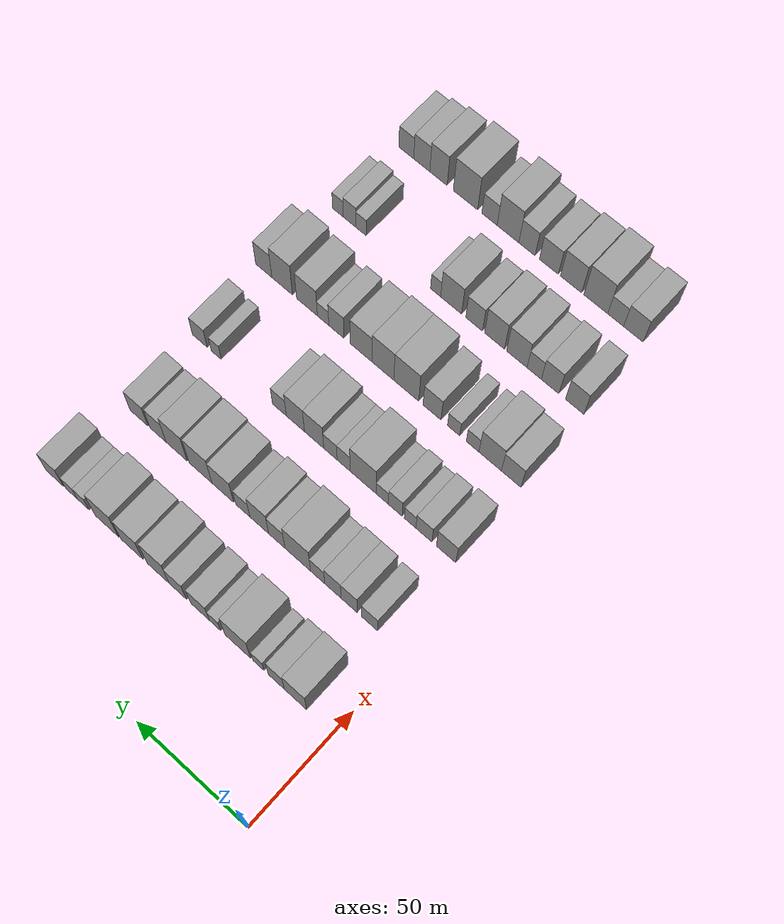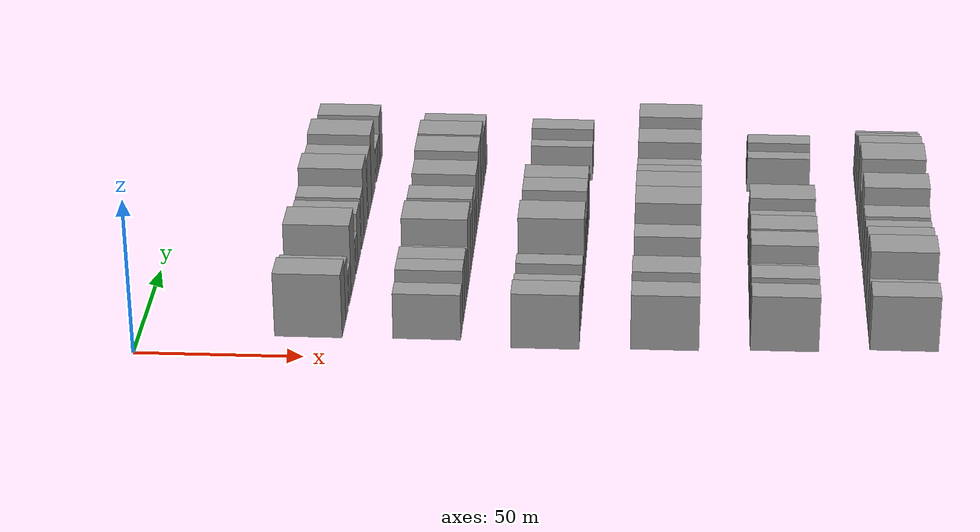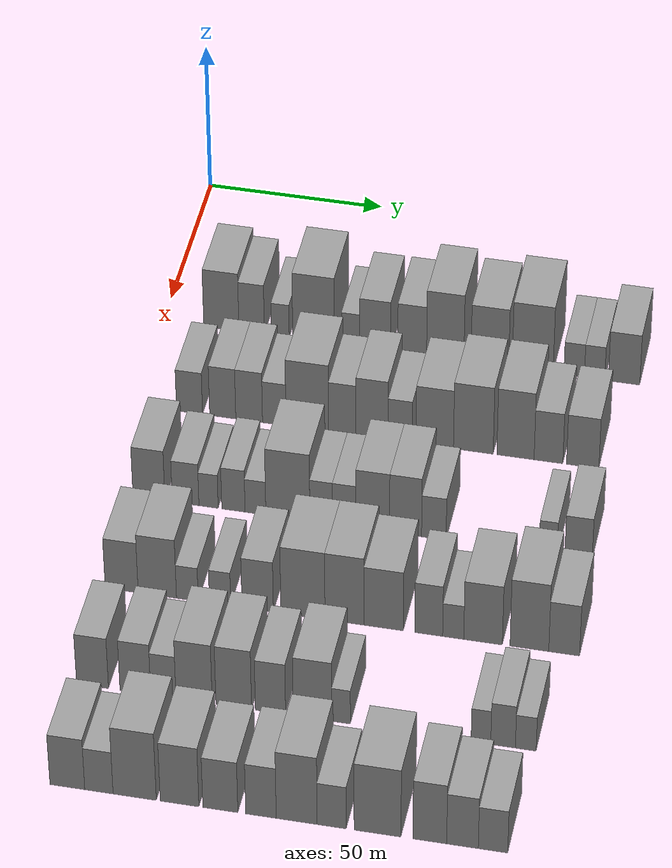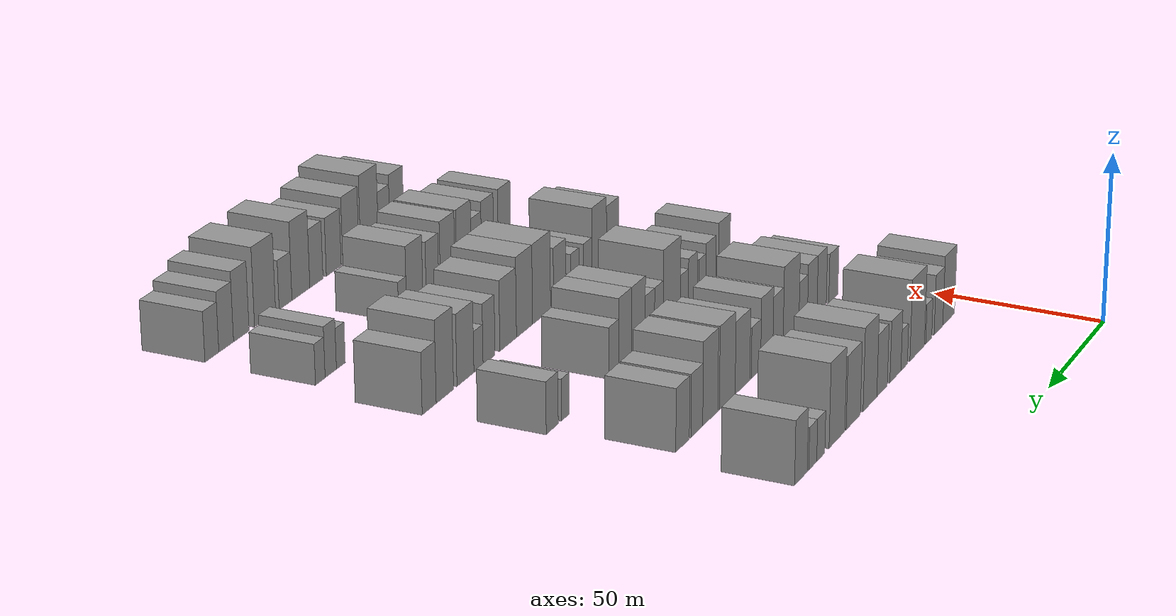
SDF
<sdf version="1.6">
 <world name="default">
  <model name="building_55">
   <static>1</static>
   <pose>50.0000 16.6256 0 0.000000 0.000000 0.000000</pose>
   <link name="link">
    <pose>0 0 10.50 0 0 0</pose>
    <collision name="collision"><geometry><box><size>20.0000 9.9738 21.0000</size></box></geometry></collision>
    <visual name="visual">
     <cast_shadows>0</cast_shadows>
     <geometry><box><size>20.0000 9.9738 21.0000</size></box></geometry>
     <material>
      <script>
       <uri>model://grey_wall/materials/scripts</uri>
       <uri>model://grey_wall/materials/textures</uri>
       <name>vrc/grey_wall</name>
      </script>
     </material>
    </visual>
   </link>
  </model>
  <model name="building_56">
   <static>1</static>
   <pose>50.0000 25.2198 0 0.000000 0.000000 0.000000</pose>
   <link name="link">
    <pose>0 0 9.00 0 0 0</pose>
    <collision name="collision"><geometry><box><size>20.0000 7.2147 18.0000</size></box></geometry></collision>
    <visual name="visual">
     <cast_shadows>0</cast_shadows>
     <geometry><box><size>20.0000 7.2147 18.0000</size></box></geometry>
     <material>
      <script>
       <uri>model://grey_wall/materials/scripts</uri>
       <uri>model://grey_wall/materials/textures</uri>
       <name>vrc/grey_wall</name>
      </script>
     </material>
    </visual>
   </link>
  </model>
  <model name="building_57">
   <static>1</static>
   <pose>50.0000 33.3422 0 0.000000 0.000000 0.000000</pose>
   <link name="link">
    <pose>0 0 6.00 0 0 0</pose>
    <collision name="collision"><geometry><box><size>20.0000 5.0302 12.0000</size></box></geometry></collision>
    <visual name="visual">
     <cast_shadows>0</cast_shadows>
     <geometry><box><size>20.0000 5.0302 12.0000</size></box></geometry>
     <material>
      <script>
       <uri>model://grey_wall/materials/scripts</uri>
       <uri>model://grey_wall/materials/textures</uri>
       <name>vrc/grey_wall</name>
      </script>
     </material>
    </visual>
   </link>
  </model>
  <model name="building_58">
   <static>1</static>
   <pose>50.0000 42.7394 0 0.000000 0.000000 0.000000</pose>
   <link name="link">
    <pose>0 0 12.00 0 0 0</pose>
    <collision name="collision"><geometry><box><size>20.0000 11.7641 24.0000</size></box></geometry></collision>
    <visual name="visual">
     <cast_shadows>0</cast_shadows>
     <geometry><box><size>20.0000 11.7641 24.0000</size></box></geometry>
     <material>
      <script>
       <uri>model://grey_wall/materials/scripts</uri>
       <uri>model://grey_wall/materials/textures</uri>
       <name>vrc/grey_wall</name>
      </script>
     </material>
    </visual>
   </link>
  </model>
  <model name="building_59">
   <static>1</static>
   <pose>50.0000 53.1922 0 0.000000 0.000000 0.000000</pose>
   <link name="link">
    <pose>0 0 6.00 0 0 0</pose>
    <collision name="collision"><geometry><box><size>20.0000 5.1414 12.0000</size></box></geometry></collision>
    <visual name="visual">
     <cast_shadows>0</cast_shadows>
     <geometry><box><size>20.0000 5.1414 12.0000</size></box></geometry>
     <material>
      <script>
       <uri>model://grey_wall/materials/scripts</uri>
       <uri>model://grey_wall/materials/textures</uri>
       <name>vrc/grey_wall</name>
      </script>
     </material>
    </visual>
   </link>
  </model>
  <model name="building_60">
   <static>1</static>
   <pose>50.0000 60.1032 0 0.000000 0.000000 0.000000</pose>
   <link name="link">
    <pose>0 0 9.00 0 0 0</pose>
    <collision name="collision"><geometry><box><size>20.0000 8.6808 18.0000</size></box></geometry></collision>
    <visual name="visual">
     <cast_shadows>0</cast_shadows>
     <geometry><box><size>20.0000 8.6808 18.0000</size></box></geometry>
     <material>
      <script>
       <uri>model://grey_wall/materials/scripts</uri>
       <uri>model://grey_wall/materials/textures</uri>
       <name>vrc/grey_wall</name>
      </script>
     </material>
    </visual>
   </link>
  </model>
  <model name="building_61">
   <static>1</static>
   <pose>50.0000 70.4776 0 0.000000 0.000000 0.000000</pose>
   <link name="link">
    <pose>0 0 9.00 0 0 0</pose>
    <collision name="collision"><geometry><box><size>20.0000 8.0680 18.0000</size></box></geometry></collision>
    <visual name="visual">
     <cast_shadows>0</cast_shadows>
     <geometry><box><size>20.0000 8.0680 18.0000</size></box></geometry>
     <material>
      <script>
       <uri>model://grey_wall/materials/scripts</uri>
       <uri>model://grey_wall/materials/textures</uri>
       <name>vrc/grey_wall</name>
      </script>
     </material>
    </visual>
   </link>
  </model>
  <model name="building_62">
   <static>1</static>
   <pose>50.0000 79.7309 0 0.000000 0.000000 0.000000</pose>
   <link name="link">
    <pose>0 0 12.00 0 0 0</pose>
    <collision name="collision"><geometry><box><size>20.0000 10.4385 24.0000</size></box></geometry></collision>
    <visual name="visual">
     <cast_shadows>0</cast_shadows>
     <geometry><box><size>20.0000 10.4385 24.0000</size></box></geometry>
     <material>
      <script>
       <uri>model://grey_wall/materials/scripts</uri>
       <uri>model://grey_wall/materials/textures</uri>
       <name>vrc/grey_wall</name>
      </script>
     </material>
    </visual>
   </link>
  </model>
  <model name="building_63">
   <static>1</static>
   <pose>50.0000 92.1981 0 0.000000 0.000000 0.000000</pose>
   <link name="link">
    <pose>0 0 10.50 0 0 0</pose>
    <collision name="collision"><geometry><box><size>20.0000 10.4959 21.0000</size></box></geometry></collision>
    <visual name="visual">
     <cast_shadows>0</cast_shadows>
     <geometry><box><size>20.0000 10.4959 21.0000</size></box></geometry>
     <material>
      <script>
       <uri>model://grey_wall/materials/scripts</uri>
       <uri>model://grey_wall/materials/textures</uri>
       <name>vrc/grey_wall</name>
      </script>
     </material>
    </visual>
   </link>
  </model>
  <model name="building_64">
   <static>1</static>
   <pose>50.0000 104.1348 0 0.000000 0.000000 0.000000</pose>
   <link name="link">
    <pose>0 0 12.00 0 0 0</pose>
    <collision name="collision"><geometry><box><size>20.0000 11.3775 24.0000</size></box></geometry></collision>
    <visual name="visual">
     <cast_shadows>0</cast_shadows>
     <geometry><box><size>20.0000 11.3775 24.0000</size></box></geometry>
     <material>
      <script>
       <uri>model://grey_wall/materials/scripts</uri>
       <uri>model://grey_wall/materials/textures</uri>
       <name>vrc/grey_wall</name>
      </script>
     </material>
    </visual>
   </link>
  </model>
  <model name="building_65">
   <static>1</static>
   <pose>50.0000 115.6754 0 0.000000 0.000000 0.000000</pose>
   <link name="link">
    <pose>0 0 6.00 0 0 0</pose>
    <collision name="collision"><geometry><box><size>20.0000 5.7039 12.0000</size></box></geometry></collision>
    <visual name="visual">
     <cast_shadows>0</cast_shadows>
     <geometry><box><size>20.0000 5.7039 12.0000</size></box></geometry>
     <material>
      <script>
       <uri>model://grey_wall/materials/scripts</uri>
       <uri>model://grey_wall/materials/textures</uri>
       <name>vrc/grey_wall</name>
      </script>
     </material>
    </visual>
   </link>
  </model>
  <model name="building_66">
   <static>1</static>
   <pose>50.0000 121.3418 0 0.000000 0.000000 0.000000</pose>
   <link name="link">
    <pose>0 0 6.00 0 0 0</pose>
    <collision name="collision"><geometry><box><size>20.0000 5.6288 12.0000</size></box></geometry></collision>
    <visual name="visual">
     <cast_shadows>0</cast_shadows>
     <geometry><box><size>20.0000 5.6288 12.0000</size></box></geometry>
     <material>
      <script>
       <uri>model://grey_wall/materials/scripts</uri>
       <uri>model://grey_wall/materials/textures</uri>
       <name>vrc/grey_wall</name>
      </script>
     </material>
    </visual>
   </link>
  </model>
  <model name="building_67">
   <static>1</static>
   <pose>50.0000 129.4987 0 0.000000 0.000000 0.000000</pose>
   <link name="link">
    <pose>0 0 9.00 0 0 0</pose>
    <collision name="collision"><geometry><box><size>20.0000 8.6850 18.0000</size></box></geometry></collision>
    <visual name="visual">
     <cast_shadows>0</cast_shadows>
     <geometry><box><size>20.0000 8.6850 18.0000</size></box></geometry>
     <material>
      <script>
       <uri>model://grey_wall/materials/scripts</uri>
       <uri>model://grey_wall/materials/textures</uri>
       <name>vrc/grey_wall</name>
      </script>
     </material>
    </visual>
   </link>
  </model>
  <model name="building_180">
   <static>1</static>
   <pose>85.0000 15.6323 0 0.000000 0.000000 0.000000</pose>
   <link name="link">
    <pose>0 0 7.50 0 0 0</pose>
    <collision name="collision"><geometry><box><size>20.0000 7.2314 15.0000</size></box></geometry></collision>
    <visual name="visual">
     <cast_shadows>0</cast_shadows>
     <geometry><box><size>20.0000 7.2314 15.0000</size></box></geometry>
     <material>
      <script>
       <uri>model://grey_wall/materials/scripts</uri>
       <uri>model://grey_wall/materials/textures</uri>
       <name>vrc/grey_wall</name>
      </script>
     </material>
    </visual>
   </link>
  </model>
  <model name="building_181">
   <static>1</static>
   <pose>85.0000 24.8751 0 0.000000 0.000000 0.000000</pose>
   <link name="link">
    <pose>0 0 9.00 0 0 0</pose>
    <collision name="collision"><geometry><box><size>20.0000 7.2543 18.0000</size></box></geometry></collision>
    <visual name="visual">
     <cast_shadows>0</cast_shadows>
     <geometry><box><size>20.0000 7.2543 18.0000</size></box></geometry>
     <material>
      <script>
       <uri>model://grey_wall/materials/scripts</uri>
       <uri>model://grey_wall/materials/textures</uri>
       <name>vrc/grey_wall</name>
      </script>
     </material>
    </visual>
   </link>
  </model>
  <model name="building_182">
   <static>1</static>
   <pose>85.0000 32.2089 0 0.000000 0.000000 0.000000</pose>
   <link name="link">
    <pose>0 0 9.00 0 0 0</pose>
    <collision name="collision"><geometry><box><size>20.0000 7.4133 18.0000</size></box></geometry></collision>
    <visual name="visual">
     <cast_shadows>0</cast_shadows>
     <geometry><box><size>20.0000 7.4133 18.0000</size></box></geometry>
     <material>
      <script>
       <uri>model://grey_wall/materials/scripts</uri>
       <uri>model://grey_wall/materials/textures</uri>
       <name>vrc/grey_wall</name>
      </script>
     </material>
    </visual>
   </link>
  </model>
  <model name="building_183">
   <static>1</static>
   <pose>85.0000 39.1697 0 0.000000 0.000000 0.000000</pose>
   <link name="link">
    <pose>0 0 7.50 0 0 0</pose>
    <collision name="collision"><geometry><box><size>20.0000 6.5083 15.0000</size></box></geometry></collision>
    <visual name="visual">
     <cast_shadows>0</cast_shadows>
     <geometry><box><size>20.0000 6.5083 15.0000</size></box></geometry>
     <material>
      <script>
       <uri>model://grey_wall/materials/scripts</uri>
       <uri>model://grey_wall/materials/textures</uri>
       <name>vrc/grey_wall</name>
      </script>
     </material>
    </visual>
   </link>
  </model>
  <model name="building_184">
   <static>1</static>
   <pose>85.0000 48.3193 0 0.000000 0.000000 0.000000</pose>
   <link name="link">
    <pose>0 0 12.00 0 0 0</pose>
    <collision name="collision"><geometry><box><size>20.0000 11.7910 24.0000</size></box></geometry></collision>
    <visual name="visual">
     <cast_shadows>0</cast_shadows>
     <geometry><box><size>20.0000 11.7910 24.0000</size></box></geometry>
     <material>
      <script>
       <uri>model://grey_wall/materials/scripts</uri>
       <uri>model://grey_wall/materials/textures</uri>
       <name>vrc/grey_wall</name>
      </script>
     </material>
    </visual>
   </link>
  </model>
  <model name="building_185">
   <static>1</static>
   <pose>85.0000 57.9907 0 0.000000 0.000000 0.000000</pose>
   <link name="link">
    <pose>0 0 9.00 0 0 0</pose>
    <collision name="collision"><geometry><box><size>20.0000 7.5517 18.0000</size></box></geometry></collision>
    <visual name="visual">
     <cast_shadows>0</cast_shadows>
     <geometry><box><size>20.0000 7.5517 18.0000</size></box></geometry>
     <material>
      <script>
       <uri>model://grey_wall/materials/scripts</uri>
       <uri>model://grey_wall/materials/textures</uri>
       <name>vrc/grey_wall</name>
      </script>
     </material>
    </visual>
   </link>
  </model>
  <model name="building_186">
   <static>1</static>
   <pose>85.0000 66.1621 0 0.000000 0.000000 0.000000</pose>
   <link name="link">
    <pose>0 0 10.50 0 0 0</pose>
    <collision name="collision"><geometry><box><size>20.0000 8.7911 21.0000</size></box></geometry></collision>
    <visual name="visual">
     <cast_shadows>0</cast_shadows>
     <geometry><box><size>20.0000 8.7911 21.0000</size></box></geometry>
     <material>
      <script>
       <uri>model://grey_wall/materials/scripts</uri>
       <uri>model://grey_wall/materials/textures</uri>
       <name>vrc/grey_wall</name>
      </script>
     </material>
    </visual>
   </link>
  </model>
  <model name="building_187">
   <static>1</static>
   <pose>85.0000 73.9094 0 0.000000 0.000000 0.000000</pose>
   <link name="link">
    <pose>0 0 7.50 0 0 0</pose>
    <collision name="collision"><geometry><box><size>20.0000 6.7035 15.0000</size></box></geometry></collision>
    <visual name="visual">
     <cast_shadows>0</cast_shadows>
     <geometry><box><size>20.0000 6.7035 15.0000</size></box></geometry>
     <material>
      <script>
       <uri>model://grey_wall/materials/scripts</uri>
       <uri>model://grey_wall/materials/textures</uri>
       <name>vrc/grey_wall</name>
      </script>
     </material>
    </visual>
   </link>
  </model>
  <model name="building_188">
   <static>1</static>
   <pose>85.0000 83.3965 0 0.000000 0.000000 0.000000</pose>
   <link name="link">
    <pose>0 0 10.50 0 0 0</pose>
    <collision name="collision"><geometry><box><size>20.0000 10.2705 21.0000</size></box></geometry></collision>
    <visual name="visual">
     <cast_shadows>0</cast_shadows>
     <geometry><box><size>20.0000 10.2705 21.0000</size></box></geometry>
     <material>
      <script>
       <uri>model://grey_wall/materials/scripts</uri>
       <uri>model://grey_wall/materials/textures</uri>
       <name>vrc/grey_wall</name>
      </script>
     </material>
    </visual>
   </link>
  </model>
  <model name="building_189">
   <static>1</static>
   <pose>85.0000 93.9676 0 0.000000 0.000000 0.000000</pose>
   <link name="link">
    <pose>0 0 12.00 0 0 0</pose>
    <collision name="collision"><geometry><box><size>20.0000 10.8718 24.0000</size></box></geometry></collision>
    <visual name="visual">
     <cast_shadows>0</cast_shadows>
     <geometry><box><size>20.0000 10.8718 24.0000</size></box></geometry>
     <material>
      <script>
       <uri>model://grey_wall/materials/scripts</uri>
       <uri>model://grey_wall/materials/textures</uri>
       <name>vrc/grey_wall</name>
      </script>
     </material>
    </visual>
   </link>
  </model>
  <model name="building_190">
   <static>1</static>
   <pose>85.0000 105.4801 0 0.000000 0.000000 0.000000</pose>
   <link name="link">
    <pose>0 0 12.00 0 0 0</pose>
    <collision name="collision"><geometry><box><size>20.0000 10.1533 24.0000</size></box></geometry></collision>
    <visual name="visual">
     <cast_shadows>0</cast_shadows>
     <geometry><box><size>20.0000 10.1533 24.0000</size></box></geometry>
     <material>
      <script>
       <uri>model://grey_wall/materials/scripts</uri>
       <uri>model://grey_wall/materials/textures</uri>
       <name>vrc/grey_wall</name>
      </script>
     </material>
    </visual>
   </link>
  </model>
  <model name="building_191">
   <static>1</static>
   <pose>85.0000 114.4737 0 0.000000 0.000000 0.000000</pose>
   <link name="link">
    <pose>0 0 9.00 0 0 0</pose>
    <collision name="collision"><geometry><box><size>20.0000 7.8338 18.0000</size></box></geometry></collision>
    <visual name="visual">
     <cast_shadows>0</cast_shadows>
     <geometry><box><size>20.0000 7.8338 18.0000</size></box></geometry>
     <material>
      <script>
       <uri>model://grey_wall/materials/scripts</uri>
       <uri>model://grey_wall/materials/textures</uri>
       <name>vrc/grey_wall</name>
      </script>
     </material>
    </visual>
   </link>
  </model>
  <model name="building_192">
   <static>1</static>
   <pose>85.0000 123.7861 0 0.000000 0.000000 0.000000</pose>
   <link name="link">
    <pose>0 0 9.00 0 0 0</pose>
    <collision name="collision"><geometry><box><size>20.0000 8.7911 18.0000</size></box></geometry></collision>
    <visual name="visual">
     <cast_shadows>0</cast_shadows>
     <geometry><box><size>20.0000 8.7911 18.0000</size></box></geometry>
     <material>
      <script>
       <uri>model://grey_wall/materials/scripts</uri>
       <uri>model://grey_wall/materials/textures</uri>
       <name>vrc/grey_wall</name>
      </script>
     </material>
    </visual>
   </link>
  </model>
  <model name="building_304">
   <static>1</static>
   <pose>120.0000 12.6058 0 0.000000 0.000000 0.000000</pose>
   <link name="link">
    <pose>0 0 9.00 0 0 0</pose>
    <collision name="collision"><geometry><box><size>20.0000 8.7283 18.0000</size></box></geometry></collision>
    <visual name="visual">
     <cast_shadows>0</cast_shadows>
     <geometry><box><size>20.0000 8.7283 18.0000</size></box></geometry>
     <material>
      <script>
       <uri>model://grey_wall/materials/scripts</uri>
       <uri>model://grey_wall/materials/textures</uri>
       <name>vrc/grey_wall</name>
      </script>
     </material>
    </visual>
   </link>
  </model>
  <model name="building_305">
   <static>1</static>
   <pose>120.0000 22.6067 0 0.000000 0.000000 0.000000</pose>
   <link name="link">
    <pose>0 0 7.50 0 0 0</pose>
    <collision name="collision"><geometry><box><size>20.0000 7.2736 15.0000</size></box></geometry></collision>
    <visual name="visual">
     <cast_shadows>0</cast_shadows>
     <geometry><box><size>20.0000 7.2736 15.0000</size></box></geometry>
     <material>
      <script>
       <uri>model://grey_wall/materials/scripts</uri>
       <uri>model://grey_wall/materials/textures</uri>
       <name>vrc/grey_wall</name>
      </script>
     </material>
    </visual>
   </link>
  </model>
  <model name="building_306">
   <static>1</static>
   <pose>120.0000 28.8604 0 0.000000 0.000000 0.000000</pose>
   <link name="link">
    <pose>0 0 6.00 0 0 0</pose>
    <collision name="collision"><geometry><box><size>20.0000 5.2337 12.0000</size></box></geometry></collision>
    <visual name="visual">
     <cast_shadows>0</cast_shadows>
     <geometry><box><size>20.0000 5.2337 12.0000</size></box></geometry>
     <material>
      <script>
       <uri>model://grey_wall/materials/scripts</uri>
       <uri>model://grey_wall/materials/textures</uri>
       <name>vrc/grey_wall</name>
      </script>
     </material>
    </visual>
   </link>
  </model>
  <model name="building_307">
   <static>1</static>
   <pose>120.0000 35.6382 0 0.000000 0.000000 0.000000</pose>
   <link name="link">
    <pose>0 0 7.50 0 0 0</pose>
    <collision name="collision"><geometry><box><size>20.0000 6.3218 15.0000</size></box></geometry></collision>
    <visual name="visual">
     <cast_shadows>0</cast_shadows>
     <geometry><box><size>20.0000 6.3218 15.0000</size></box></geometry>
     <material>
      <script>
       <uri>model://grey_wall/materials/scripts</uri>
       <uri>model://grey_wall/materials/textures</uri>
       <name>vrc/grey_wall</name>
      </script>
     </material>
    </visual>
   </link>
  </model>
  <model name="building_308">
   <static>1</static>
   <pose>120.0000 41.6207 0 0.000000 0.000000 0.000000</pose>
   <link name="link">
    <pose>0 0 6.00 0 0 0</pose>
    <collision name="collision"><geometry><box><size>20.0000 5.6432 12.0000</size></box></geometry></collision>
    <visual name="visual">
     <cast_shadows>0</cast_shadows>
     <geometry><box><size>20.0000 5.6432 12.0000</size></box></geometry>
     <material>
      <script>
       <uri>model://grey_wall/materials/scripts</uri>
       <uri>model://grey_wall/materials/textures</uri>
       <name>vrc/grey_wall</name>
      </script>
     </material>
    </visual>
   </link>
  </model>
  <model name="building_309">
   <static>1</static>
   <pose>120.0000 50.4083 0 0.000000 0.000000 0.000000</pose>
   <link name="link">
    <pose>0 0 12.00 0 0 0</pose>
    <collision name="collision"><geometry><box><size>20.0000 11.9320 24.0000</size></box></geometry></collision>
    <visual name="visual">
     <cast_shadows>0</cast_shadows>
     <geometry><box><size>20.0000 11.9320 24.0000</size></box></geometry>
     <material>
      <script>
       <uri>model://grey_wall/materials/scripts</uri>
       <uri>model://grey_wall/materials/textures</uri>
       <name>vrc/grey_wall</name>
      </script>
     </material>
    </visual>
   </link>
  </model>
  <model name="building_310">
   <static>1</static>
   <pose>120.0000 59.4327 0 0.000000 0.000000 0.000000</pose>
   <link name="link">
    <pose>0 0 7.50 0 0 0</pose>
    <collision name="collision"><geometry><box><size>20.0000 6.1167 15.0000</size></box></geometry></collision>
    <visual name="visual">
     <cast_shadows>0</cast_shadows>
     <geometry><box><size>20.0000 6.1167 15.0000</size></box></geometry>
     <material>
      <script>
       <uri>model://grey_wall/materials/scripts</uri>
       <uri>model://grey_wall/materials/textures</uri>
       <name>vrc/grey_wall</name>
      </script>
     </material>
    </visual>
   </link>
  </model>
  <model name="building_311">
   <static>1</static>
   <pose>120.0000 65.6397 0 0.000000 0.000000 0.000000</pose>
   <link name="link">
    <pose>0 0 7.50 0 0 0</pose>
    <collision name="collision"><geometry><box><size>20.0000 6.2974 15.0000</size></box></geometry></collision>
    <visual name="visual">
     <cast_shadows>0</cast_shadows>
     <geometry><box><size>20.0000 6.2974 15.0000</size></box></geometry>
     <material>
      <script>
       <uri>model://grey_wall/materials/scripts</uri>
       <uri>model://grey_wall/materials/textures</uri>
       <name>vrc/grey_wall</name>
      </script>
     </material>
    </visual>
   </link>
  </model>
  <model name="building_312">
   <static>1</static>
   <pose>120.0000 73.3262 0 0.000000 0.000000 0.000000</pose>
   <link name="link">
    <pose>0 0 10.50 0 0 0</pose>
    <collision name="collision"><geometry><box><size>20.0000 9.0757 21.0000</size></box></geometry></collision>
    <visual name="visual">
     <cast_shadows>0</cast_shadows>
     <geometry><box><size>20.0000 9.0757 21.0000</size></box></geometry>
     <material>
      <script>
       <uri>model://grey_wall/materials/scripts</uri>
       <uri>model://grey_wall/materials/textures</uri>
       <name>vrc/grey_wall</name>
      </script>
     </material>
    </visual>
   </link>
  </model>
  <model name="building_313">
   <static>1</static>
   <pose>120.0000 82.1674 0 0.000000 0.000000 0.000000</pose>
   <link name="link">
    <pose>0 0 10.50 0 0 0</pose>
    <collision name="collision"><geometry><box><size>20.0000 8.6066 21.0000</size></box></geometry></collision>
    <visual name="visual">
     <cast_shadows>0</cast_shadows>
     <geometry><box><size>20.0000 8.6066 21.0000</size></box></geometry>
     <material>
      <script>
       <uri>model://grey_wall/materials/scripts</uri>
       <uri>model://grey_wall/materials/textures</uri>
       <name>vrc/grey_wall</name>
      </script>
     </material>
    </visual>
   </link>
  </model>
  <model name="building_314">
   <static>1</static>
   <pose>120.0000 89.7634 0 0.000000 0.000000 0.000000</pose>
   <link name="link">
    <pose>0 0 7.50 0 0 0</pose>
    <collision name="collision"><geometry><box><size>20.0000 6.5854 15.0000</size></box></geometry></collision>
    <visual name="visual">
     <cast_shadows>0</cast_shadows>
     <geometry><box><size>20.0000 6.5854 15.0000</size></box></geometry>
     <material>
      <script>
       <uri>model://grey_wall/materials/scripts</uri>
       <uri>model://grey_wall/materials/textures</uri>
       <name>vrc/grey_wall</name>
      </script>
     </material>
    </visual>
   </link>
  </model>
  <model name="building_315">
   <static>1</static>
   <pose>120.0000 120.3362 0 0.000000 0.000000 0.000000</pose>
   <link name="link">
    <pose>0 0 6.00 0 0 0</pose>
    <collision name="collision"><geometry><box><size>20.0000 4.8534 12.0000</size></box></geometry></collision>
    <visual name="visual">
     <cast_shadows>0</cast_shadows>
     <geometry><box><size>20.0000 4.8534 12.0000</size></box></geometry>
     <material>
      <script>
       <uri>model://grey_wall/materials/scripts</uri>
       <uri>model://grey_wall/materials/textures</uri>
       <name>vrc/grey_wall</name>
      </script>
     </material>
    </visual>
   </link>
  </model>
  <model name="building_316">
   <static>1</static>
   <pose>120.0000 128.4043 0 0.000000 0.000000 0.000000</pose>
   <link name="link">
    <pose>0 0 7.50 0 0 0</pose>
    <collision name="collision"><geometry><box><size>20.0000 7.2827 15.0000</size></box></geometry></collision>
    <visual name="visual">
     <cast_shadows>0</cast_shadows>
     <geometry><box><size>20.0000 7.2827 15.0000</size></box></geometry>
     <material>
      <script>
       <uri>model://grey_wall/materials/scripts</uri>
       <uri>model://grey_wall/materials/textures</uri>
       <name>vrc/grey_wall</name>
      </script>
     </material>
    </visual>
   </link>
  </model>
  <model name="building_428">
   <static>1</static>
   <pose>155.0000 13.6049 0 0.000000 0.000000 0.000000</pose>
   <link name="link">
    <pose>0 0 9.00 0 0 0</pose>
    <collision name="collision"><geometry><box><size>20.0000 8.8243 18.0000</size></box></geometry></collision>
    <visual name="visual">
     <cast_shadows>0</cast_shadows>
     <geometry><box><size>20.0000 8.8243 18.0000</size></box></geometry>
     <material>
      <script>
       <uri>model://grey_wall/materials/scripts</uri>
       <uri>model://grey_wall/materials/textures</uri>
       <name>vrc/grey_wall</name>
      </script>
     </material>
    </visual>
   </link>
  </model>
  <model name="building_429">
   <static>1</static>
   <pose>155.0000 23.1366 0 0.000000 0.000000 0.000000</pose>
   <link name="link">
    <pose>0 0 10.50 0 0 0</pose>
    <collision name="collision"><geometry><box><size>20.0000 10.2390 21.0000</size></box></geometry></collision>
    <visual name="visual">
     <cast_shadows>0</cast_shadows>
     <geometry><box><size>20.0000 10.2390 21.0000</size></box></geometry>
     <material>
      <script>
       <uri>model://grey_wall/materials/scripts</uri>
       <uri>model://grey_wall/materials/textures</uri>
       <name>vrc/grey_wall</name>
      </script>
     </material>
    </visual>
   </link>
  </model>
  <model name="building_430">
   <static>1</static>
   <pose>155.0000 31.1535 0 0.000000 0.000000 0.000000</pose>
   <link name="link">
    <pose>0 0 6.00 0 0 0</pose>
    <collision name="collision"><geometry><box><size>20.0000 5.7948 12.0000</size></box></geometry></collision>
    <visual name="visual">
     <cast_shadows>0</cast_shadows>
     <geometry><box><size>20.0000 5.7948 12.0000</size></box></geometry>
     <material>
      <script>
       <uri>model://grey_wall/materials/scripts</uri>
       <uri>model://grey_wall/materials/textures</uri>
       <name>vrc/grey_wall</name>
      </script>
     </material>
    </visual>
   </link>
  </model>
  <model name="building_431">
   <static>1</static>
   <pose>155.0000 39.8757 0 0.000000 0.000000 0.000000</pose>
   <link name="link">
    <pose>0 0 6.00 0 0 0</pose>
    <collision name="collision"><geometry><box><size>20.0000 5.6496 12.0000</size></box></geometry></collision>
    <visual name="visual">
     <cast_shadows>0</cast_shadows>
     <geometry><box><size>20.0000 5.6496 12.0000</size></box></geometry>
     <material>
      <script>
       <uri>model://grey_wall/materials/scripts</uri>
       <uri>model://grey_wall/materials/textures</uri>
       <name>vrc/grey_wall</name>
      </script>
     </material>
    </visual>
   </link>
  </model>
  <model name="building_432">
   <static>1</static>
   <pose>155.0000 49.8714 0 0.000000 0.000000 0.000000</pose>
   <link name="link">
    <pose>0 0 9.00 0 0 0</pose>
    <collision name="collision"><geometry><box><size>20.0000 8.3418 18.0000</size></box></geometry></collision>
    <visual name="visual">
     <cast_shadows>0</cast_shadows>
     <geometry><box><size>20.0000 8.3418 18.0000</size></box></geometry>
     <material>
      <script>
       <uri>model://grey_wall/materials/scripts</uri>
       <uri>model://grey_wall/materials/textures</uri>
       <name>vrc/grey_wall</name>
      </script>
     </material>
    </visual>
   </link>
  </model>
  <model name="building_433">
   <static>1</static>
   <pose>155.0000 61.8766 0 0.000000 0.000000 0.000000</pose>
   <link name="link">
    <pose>0 0 12.00 0 0 0</pose>
    <collision name="collision"><geometry><box><size>20.0000 11.6687 24.0000</size></box></geometry></collision>
    <visual name="visual">
     <cast_shadows>0</cast_shadows>
     <geometry><box><size>20.0000 11.6687 24.0000</size></box></geometry>
     <material>
      <script>
       <uri>model://grey_wall/materials/scripts</uri>
       <uri>model://grey_wall/materials/textures</uri>
       <name>vrc/grey_wall</name>
      </script>
     </material>
    </visual>
   </link>
  </model>
  <model name="building_434">
   <static>1</static>
   <pose>155.0000 72.8483 0 0.000000 0.000000 0.000000</pose>
   <link name="link">
    <pose>0 0 12.00 0 0 0</pose>
    <collision name="collision"><geometry><box><size>20.0000 10.2746 24.0000</size></box></geometry></collision>
    <visual name="visual">
     <cast_shadows>0</cast_shadows>
     <geometry><box><size>20.0000 10.2746 24.0000</size></box></geometry>
     <material>
      <script>
       <uri>model://grey_wall/materials/scripts</uri>
       <uri>model://grey_wall/materials/textures</uri>
       <name>vrc/grey_wall</name>
      </script>
     </material>
    </visual>
   </link>
  </model>
  <model name="building_435">
   <static>1</static>
   <pose>155.0000 83.1757 0 0.000000 0.000000 0.000000</pose>
   <link name="link">
    <pose>0 0 10.50 0 0 0</pose>
    <collision name="collision"><geometry><box><size>20.0000 10.3802 21.0000</size></box></geometry></collision>
    <visual name="visual">
     <cast_shadows>0</cast_shadows>
     <geometry><box><size>20.0000 10.3802 21.0000</size></box></geometry>
     <material>
      <script>
       <uri>model://grey_wall/materials/scripts</uri>
       <uri>model://grey_wall/materials/textures</uri>
       <name>vrc/grey_wall</name>
      </script>
     </material>
    </visual>
   </link>
  </model>
  <model name="building_436">
   <static>1</static>
   <pose>155.0000 95.0254 0 0.000000 0.000000 0.000000</pose>
   <link name="link">
    <pose>0 0 9.00 0 0 0</pose>
    <collision name="collision"><geometry><box><size>20.0000 7.3194 18.0000</size></box></geometry></collision>
    <visual name="visual">
     <cast_shadows>0</cast_shadows>
     <geometry><box><size>20.0000 7.3194 18.0000</size></box></geometry>
     <material>
      <script>
       <uri>model://grey_wall/materials/scripts</uri>
       <uri>model://grey_wall/materials/textures</uri>
       <name>vrc/grey_wall</name>
      </script>
     </material>
    </visual>
   </link>
  </model>
  <model name="building_437">
   <static>1</static>
   <pose>155.0000 101.4535 0 0.000000 0.000000 0.000000</pose>
   <link name="link">
    <pose>0 0 6.00 0 0 0</pose>
    <collision name="collision"><geometry><box><size>20.0000 5.5367 12.0000</size></box></geometry></collision>
    <visual name="visual">
     <cast_shadows>0</cast_shadows>
     <geometry><box><size>20.0000 5.5367 12.0000</size></box></geometry>
     <material>
      <script>
       <uri>model://grey_wall/materials/scripts</uri>
       <uri>model://grey_wall/materials/textures</uri>
       <name>vrc/grey_wall</name>
      </script>
     </material>
    </visual>
   </link>
  </model>
  <model name="building_438">
   <static>1</static>
   <pose>155.0000 109.2726 0 0.000000 0.000000 0.000000</pose>
   <link name="link">
    <pose>0 0 10.50 0 0 0</pose>
    <collision name="collision"><geometry><box><size>20.0000 10.1015 21.0000</size></box></geometry></collision>
    <visual name="visual">
     <cast_shadows>0</cast_shadows>
     <geometry><box><size>20.0000 10.1015 21.0000</size></box></geometry>
     <material>
      <script>
       <uri>model://grey_wall/materials/scripts</uri>
       <uri>model://grey_wall/materials/textures</uri>
       <name>vrc/grey_wall</name>
      </script>
     </material>
    </visual>
   </link>
  </model>
  <model name="building_439">
   <static>1</static>
   <pose>155.0000 121.3754 0 0.000000 0.000000 0.000000</pose>
   <link name="link">
    <pose>0 0 12.00 0 0 0</pose>
    <collision name="collision"><geometry><box><size>20.0000 10.1041 24.0000</size></box></geometry></collision>
    <visual name="visual">
     <cast_shadows>0</cast_shadows>
     <geometry><box><size>20.0000 10.1041 24.0000</size></box></geometry>
     <material>
      <script>
       <uri>model://grey_wall/materials/scripts</uri>
       <uri>model://grey_wall/materials/textures</uri>
       <name>vrc/grey_wall</name>
      </script>
     </material>
    </visual>
   </link>
  </model>
  <model name="building_440">
   <static>1</static>
   <pose>155.0000 130.4437 0 0.000000 0.000000 0.000000</pose>
   <link name="link">
    <pose>0 0 9.00 0 0 0</pose>
    <collision name="collision"><geometry><box><size>20.0000 8.0325 18.0000</size></box></geometry></collision>
    <visual name="visual">
     <cast_shadows>0</cast_shadows>
     <geometry><box><size>20.0000 8.0325 18.0000</size></box></geometry>
     <material>
      <script>
       <uri>model://grey_wall/materials/scripts</uri>
       <uri>model://grey_wall/materials/textures</uri>
       <name>vrc/grey_wall</name>
      </script>
     </material>
    </visual>
   </link>
  </model>
  <model name="building_552">
   <static>1</static>
   <pose>190.0000 14.4327 0 0.000000 0.000000 0.000000</pose>
   <link name="link">
    <pose>0 0 9.00 0 0 0</pose>
    <collision name="collision"><geometry><box><size>20.0000 8.3684 18.0000</size></box></geometry></collision>
    <visual name="visual">
     <cast_shadows>0</cast_shadows>
     <geometry><box><size>20.0000 8.3684 18.0000</size></box></geometry>
     <material>
      <script>
       <uri>model://grey_wall/materials/scripts</uri>
       <uri>model://grey_wall/materials/textures</uri>
       <name>vrc/grey_wall</name>
      </script>
     </material>
    </visual>
   </link>
  </model>
  <model name="building_553">
   <static>1</static>
   <pose>190.0000 25.6391 0 0.000000 0.000000 0.000000</pose>
   <link name="link">
    <pose>0 0 9.00 0 0 0</pose>
    <collision name="collision"><geometry><box><size>20.0000 8.0444 18.0000</size></box></geometry></collision>
    <visual name="visual">
     <cast_shadows>0</cast_shadows>
     <geometry><box><size>20.0000 8.0444 18.0000</size></box></geometry>
     <material>
      <script>
       <uri>model://grey_wall/materials/scripts</uri>
       <uri>model://grey_wall/materials/textures</uri>
       <name>vrc/grey_wall</name>
      </script>
     </material>
    </visual>
   </link>
  </model>
  <model name="building_554">
   <static>1</static>
   <pose>190.0000 32.9590 0 0.000000 0.000000 0.000000</pose>
   <link name="link">
    <pose>0 0 7.50 0 0 0</pose>
    <collision name="collision"><geometry><box><size>20.0000 6.5956 15.0000</size></box></geometry></collision>
    <visual name="visual">
     <cast_shadows>0</cast_shadows>
     <geometry><box><size>20.0000 6.5956 15.0000</size></box></geometry>
     <material>
      <script>
       <uri>model://grey_wall/materials/scripts</uri>
       <uri>model://grey_wall/materials/textures</uri>
       <name>vrc/grey_wall</name>
      </script>
     </material>
    </visual>
   </link>
  </model>
  <model name="building_555">
   <static>1</static>
   <pose>190.0000 40.9761 0 0.000000 0.000000 0.000000</pose>
   <link name="link">
    <pose>0 0 10.50 0 0 0</pose>
    <collision name="collision"><geometry><box><size>20.0000 9.4385 21.0000</size></box></geometry></collision>
    <visual name="visual">
     <cast_shadows>0</cast_shadows>
     <geometry><box><size>20.0000 9.4385 21.0000</size></box></geometry>
     <material>
      <script>
       <uri>model://grey_wall/materials/scripts</uri>
       <uri>model://grey_wall/materials/textures</uri>
       <name>vrc/grey_wall</name>
      </script>
     </material>
    </visual>
   </link>
  </model>
  <model name="building_556">
   <static>1</static>
   <pose>190.0000 51.3159 0 0.000000 0.000000 0.000000</pose>
   <link name="link">
    <pose>0 0 10.50 0 0 0</pose>
    <collision name="collision"><geometry><box><size>20.0000 9.2412 21.0000</size></box></geometry></collision>
    <visual name="visual">
     <cast_shadows>0</cast_shadows>
     <geometry><box><size>20.0000 9.2412 21.0000</size></box></geometry>
     <material>
      <script>
       <uri>model://grey_wall/materials/scripts</uri>
       <uri>model://grey_wall/materials/textures</uri>
       <name>vrc/grey_wall</name>
      </script>
     </material>
    </visual>
   </link>
  </model>
  <model name="building_557">
   <static>1</static>
   <pose>190.0000 60.8457 0 0.000000 0.000000 0.000000</pose>
   <link name="link">
    <pose>0 0 9.00 0 0 0</pose>
    <collision name="collision"><geometry><box><size>20.0000 7.8183 18.0000</size></box></geometry></collision>
    <visual name="visual">
     <cast_shadows>0</cast_shadows>
     <geometry><box><size>20.0000 7.8183 18.0000</size></box></geometry>
     <material>
      <script>
       <uri>model://grey_wall/materials/scripts</uri>
       <uri>model://grey_wall/materials/textures</uri>
       <name>vrc/grey_wall</name>
      </script>
     </material>
    </visual>
   </link>
  </model>
  <model name="building_558">
   <static>1</static>
   <pose>190.0000 71.7209 0 0.000000 0.000000 0.000000</pose>
   <link name="link">
    <pose>0 0 10.50 0 0 0</pose>
    <collision name="collision"><geometry><box><size>20.0000 9.9321 21.0000</size></box></geometry></collision>
    <visual name="visual">
     <cast_shadows>0</cast_shadows>
     <geometry><box><size>20.0000 9.9321 21.0000</size></box></geometry>
     <material>
      <script>
       <uri>model://grey_wall/materials/scripts</uri>
       <uri>model://grey_wall/materials/textures</uri>
       <name>vrc/grey_wall</name>
      </script>
     </material>
    </visual>
   </link>
  </model>
  <model name="building_559">
   <static>1</static>
   <pose>190.0000 79.0983 0 0.000000 0.000000 0.000000</pose>
   <link name="link">
    <pose>0 0 6.00 0 0 0</pose>
    <collision name="collision"><geometry><box><size>20.0000 4.8227 12.0000</size></box></geometry></collision>
    <visual name="visual">
     <cast_shadows>0</cast_shadows>
     <geometry><box><size>20.0000 4.8227 12.0000</size></box></geometry>
     <material>
      <script>
       <uri>model://grey_wall/materials/scripts</uri>
       <uri>model://grey_wall/materials/textures</uri>
       <name>vrc/grey_wall</name>
      </script>
     </material>
    </visual>
   </link>
  </model>
  <model name="building_560">
   <static>1</static>
   <pose>190.0000 115.0488 0 0.000000 0.000000 0.000000</pose>
   <link name="link">
    <pose>0 0 6.00 0 0 0</pose>
    <collision name="collision"><geometry><box><size>20.0000 5.0261 12.0000</size></box></geometry></collision>
    <visual name="visual">
     <cast_shadows>0</cast_shadows>
     <geometry><box><size>20.0000 5.0261 12.0000</size></box></geometry>
     <material>
      <script>
       <uri>model://grey_wall/materials/scripts</uri>
       <uri>model://grey_wall/materials/textures</uri>
       <name>vrc/grey_wall</name>
      </script>
     </material>
    </visual>
   </link>
  </model>
  <model name="building_561">
   <static>1</static>
   <pose>190.0000 120.7089 0 0.000000 0.000000 0.000000</pose>
   <link name="link">
    <pose>0 0 7.50 0 0 0</pose>
    <collision name="collision"><geometry><box><size>20.0000 6.2941 15.0000</size></box></geometry></collision>
    <visual name="visual">
     <cast_shadows>0</cast_shadows>
     <geometry><box><size>20.0000 6.2941 15.0000</size></box></geometry>
     <material>
      <script>
       <uri>model://grey_wall/materials/scripts</uri>
       <uri>model://grey_wall/materials/textures</uri>
       <name>vrc/grey_wall</name>
      </script>
     </material>
    </visual>
   </link>
  </model>
  <model name="building_562">
   <static>1</static>
   <pose>190.0000 126.5048 0 0.000000 0.000000 0.000000</pose>
   <link name="link">
    <pose>0 0 6.00 0 0 0</pose>
    <collision name="collision"><geometry><box><size>20.0000 5.2977 12.0000</size></box></geometry></collision>
    <visual name="visual">
     <cast_shadows>0</cast_shadows>
     <geometry><box><size>20.0000 5.2977 12.0000</size></box></geometry>
     <material>
      <script>
       <uri>model://grey_wall/materials/scripts</uri>
       <uri>model://grey_wall/materials/textures</uri>
       <name>vrc/grey_wall</name>
      </script>
     </material>
    </visual>
   </link>
  </model>
  <model name="building_682">
   <static>1</static>
   <pose>225.0000 16.6017 0 0.000000 0.000000 0.000000</pose>
   <link name="link">
    <pose>0 0 9.00 0 0 0</pose>
    <collision name="collision"><geometry><box><size>20.0000 8.9315 18.0000</size></box></geometry></collision>
    <visual name="visual">
     <cast_shadows>0</cast_shadows>
     <geometry><box><size>20.0000 8.9315 18.0000</size></box></geometry>
     <material>
      <script>
       <uri>model://grey_wall/materials/scripts</uri>
       <uri>model://grey_wall/materials/textures</uri>
       <name>vrc/grey_wall</name>
      </script>
     </material>
    </visual>
   </link>
  </model>
  <model name="building_683">
   <static>1</static>
   <pose>225.0000 24.6952 0 0.000000 0.000000 0.000000</pose>
   <link name="link">
    <pose>0 0 7.50 0 0 0</pose>
    <collision name="collision"><geometry><box><size>20.0000 7.2555 15.0000</size></box></geometry></collision>
    <visual name="visual">
     <cast_shadows>0</cast_shadows>
     <geometry><box><size>20.0000 7.2555 15.0000</size></box></geometry>
     <material>
      <script>
       <uri>model://grey_wall/materials/scripts</uri>
       <uri>model://grey_wall/materials/textures</uri>
       <name>vrc/grey_wall</name>
      </script>
     </material>
    </visual>
   </link>
  </model>
  <model name="building_684">
   <static>1</static>
   <pose>225.0000 33.8536 0 0.000000 0.000000 0.000000</pose>
   <link name="link">
    <pose>0 0 12.00 0 0 0</pose>
    <collision name="collision"><geometry><box><size>20.0000 11.0614 24.0000</size></box></geometry></collision>
    <visual name="visual">
     <cast_shadows>0</cast_shadows>
     <geometry><box><size>20.0000 11.0614 24.0000</size></box></geometry>
     <material>
      <script>
       <uri>model://grey_wall/materials/scripts</uri>
       <uri>model://grey_wall/materials/textures</uri>
       <name>vrc/grey_wall</name>
      </script>
     </material>
    </visual>
   </link>
  </model>
  <model name="building_685">
   <static>1</static>
   <pose>225.0000 45.3141 0 0.000000 0.000000 0.000000</pose>
   <link name="link">
    <pose>0 0 10.50 0 0 0</pose>
    <collision name="collision"><geometry><box><size>20.0000 9.8595 21.0000</size></box></geometry></collision>
    <visual name="visual">
     <cast_shadows>0</cast_shadows>
     <geometry><box><size>20.0000 9.8595 21.0000</size></box></geometry>
     <material>
      <script>
       <uri>model://grey_wall/materials/scripts</uri>
       <uri>model://grey_wall/materials/textures</uri>
       <name>vrc/grey_wall</name>
      </script>
     </material>
    </visual>
   </link>
  </model>
  <model name="building_686">
   <static>1</static>
   <pose>225.0000 55.6930 0 0.000000 0.000000 0.000000</pose>
   <link name="link">
    <pose>0 0 9.00 0 0 0</pose>
    <collision name="collision"><geometry><box><size>20.0000 8.8983 18.0000</size></box></geometry></collision>
    <visual name="visual">
     <cast_shadows>0</cast_shadows>
     <geometry><box><size>20.0000 8.8983 18.0000</size></box></geometry>
     <material>
      <script>
       <uri>model://grey_wall/materials/scripts</uri>
       <uri>model://grey_wall/materials/textures</uri>
       <name>vrc/grey_wall</name>
      </script>
     </material>
    </visual>
   </link>
  </model>
  <model name="building_687">
   <static>1</static>
   <pose>225.0000 66.0063 0 0.000000 0.000000 0.000000</pose>
   <link name="link">
    <pose>0 0 9.00 0 0 0</pose>
    <collision name="collision"><geometry><box><size>20.0000 7.7283 18.0000</size></box></geometry></collision>
    <visual name="visual">
     <cast_shadows>0</cast_shadows>
     <geometry><box><size>20.0000 7.7283 18.0000</size></box></geometry>
     <material>
      <script>
       <uri>model://grey_wall/materials/scripts</uri>
       <uri>model://grey_wall/materials/textures</uri>
       <name>vrc/grey_wall</name>
      </script>
     </material>
    </visual>
   </link>
  </model>
  <model name="building_688">
   <static>1</static>
   <pose>225.0000 75.0520 0 0.000000 0.000000 0.000000</pose>
   <link name="link">
    <pose>0 0 12.00 0 0 0</pose>
    <collision name="collision"><geometry><box><size>20.0000 10.3632 24.0000</size></box></geometry></collision>
    <visual name="visual">
     <cast_shadows>0</cast_shadows>
     <geometry><box><size>20.0000 10.3632 24.0000</size></box></geometry>
     <material>
      <script>
       <uri>model://grey_wall/materials/scripts</uri>
       <uri>model://grey_wall/materials/textures</uri>
       <name>vrc/grey_wall</name>
      </script>
     </material>
    </visual>
   </link>
  </model>
  <model name="building_689">
   <static>1</static>
   <pose>225.0000 83.8986 0 0.000000 0.000000 0.000000</pose>
   <link name="link">
    <pose>0 0 7.50 0 0 0</pose>
    <collision name="collision"><geometry><box><size>20.0000 7.3299 15.0000</size></box></geometry></collision>
    <visual name="visual">
     <cast_shadows>0</cast_shadows>
     <geometry><box><size>20.0000 7.3299 15.0000</size></box></geometry>
     <material>
      <script>
       <uri>model://grey_wall/materials/scripts</uri>
       <uri>model://grey_wall/materials/textures</uri>
       <name>vrc/grey_wall</name>
      </script>
     </material>
    </visual>
   </link>
  </model>
  <model name="building_690">
   <static>1</static>
   <pose>225.0000 95.4506 0 0.000000 0.000000 0.000000</pose>
   <link name="link">
    <pose>0 0 12.00 0 0 0</pose>
    <collision name="collision"><geometry><box><size>20.0000 11.7742 24.0000</size></box></geometry></collision>
    <visual name="visual">
     <cast_shadows>0</cast_shadows>
     <geometry><box><size>20.0000 11.7742 24.0000</size></box></geometry>
     <material>
      <script>
       <uri>model://grey_wall/materials/scripts</uri>
       <uri>model://grey_wall/materials/textures</uri>
       <name>vrc/grey_wall</name>
      </script>
     </material>
    </visual>
   </link>
  </model>
  <model name="building_691">
   <static>1</static>
   <pose>225.0000 108.5730 0 0.000000 0.000000 0.000000</pose>
   <link name="link">
    <pose>0 0 10.50 0 0 0</pose>
    <collision name="collision"><geometry><box><size>20.0000 8.4706 21.0000</size></box></geometry></collision>
    <visual name="visual">
     <cast_shadows>0</cast_shadows>
     <geometry><box><size>20.0000 8.4706 21.0000</size></box></geometry>
     <material>
      <script>
       <uri>model://grey_wall/materials/scripts</uri>
       <uri>model://grey_wall/materials/textures</uri>
       <name>vrc/grey_wall</name>
      </script>
     </material>
    </visual>
   </link>
  </model>
  <model name="building_692">
   <static>1</static>
   <pose>225.0000 116.7688 0 0.000000 0.000000 0.000000</pose>
   <link name="link">
    <pose>0 0 9.00 0 0 0</pose>
    <collision name="collision"><geometry><box><size>20.0000 7.9211 18.0000</size></box></geometry></collision>
    <visual name="visual">
     <cast_shadows>0</cast_shadows>
     <geometry><box><size>20.0000 7.9211 18.0000</size></box></geometry>
     <material>
      <script>
       <uri>model://grey_wall/materials/scripts</uri>
       <uri>model://grey_wall/materials/textures</uri>
       <name>vrc/grey_wall</name>
      </script>
     </material>
    </visual>
   </link>
  </model>
  <model name="building_693">
   <static>1</static>
   <pose>225.0000 124.4099 0 0.000000 0.000000 0.000000</pose>
   <link name="link">
    <pose>0 0 7.50 0 0 0</pose>
    <collision name="collision"><geometry><box><size>20.0000 7.3610 15.0000</size></box></geometry></collision>
    <visual name="visual">
     <cast_shadows>0</cast_shadows>
     <geometry><box><size>20.0000 7.3610 15.0000</size></box></geometry>
     <material>
      <script>
       <uri>model://grey_wall/materials/scripts</uri>
       <uri>model://grey_wall/materials/textures</uri>
       <name>vrc/grey_wall</name>
      </script>
     </material>
    </visual>
   </link>
  </model>
 </world>
</sdf>
